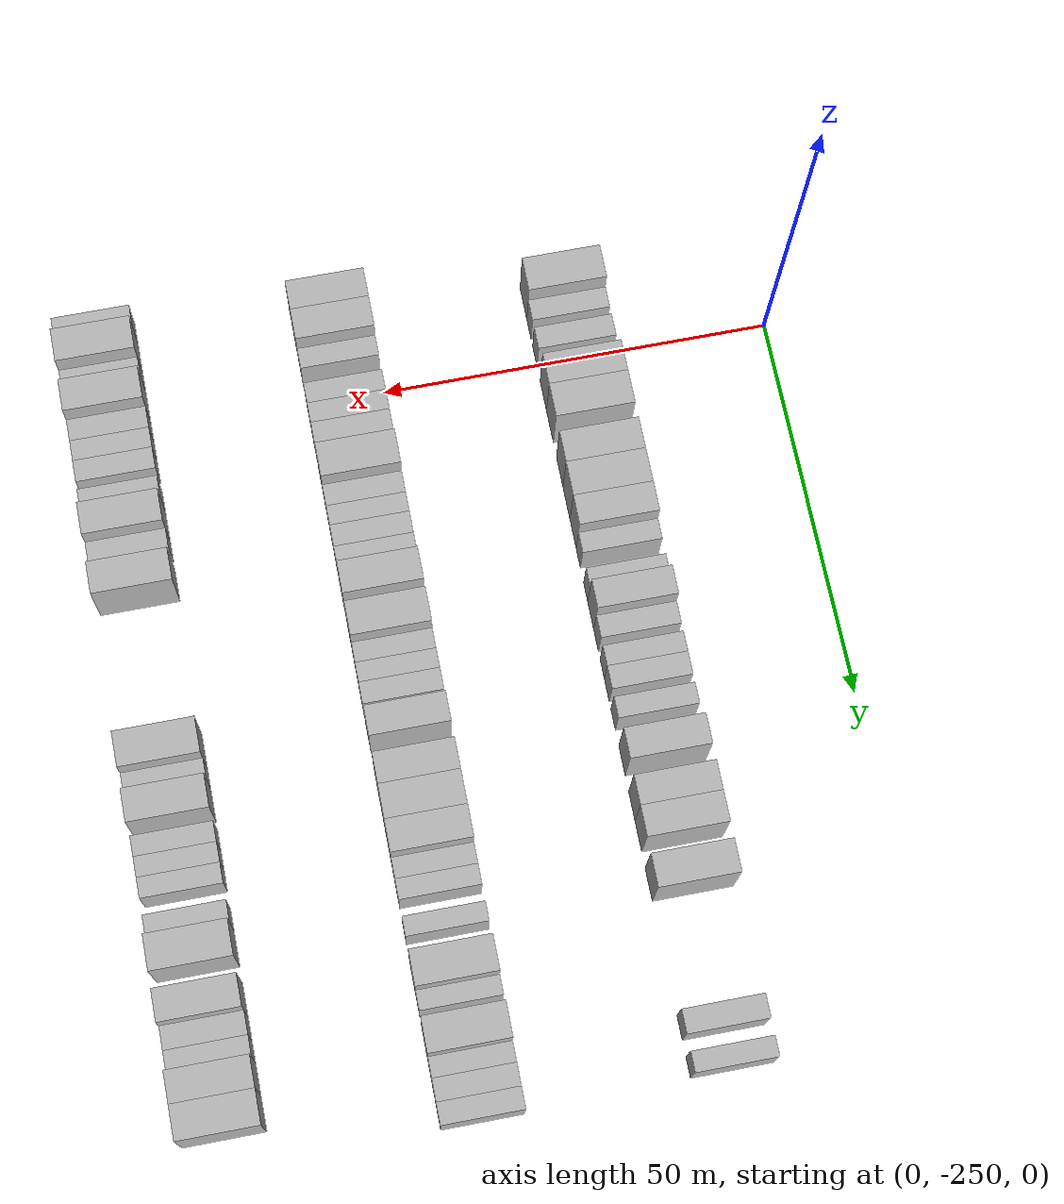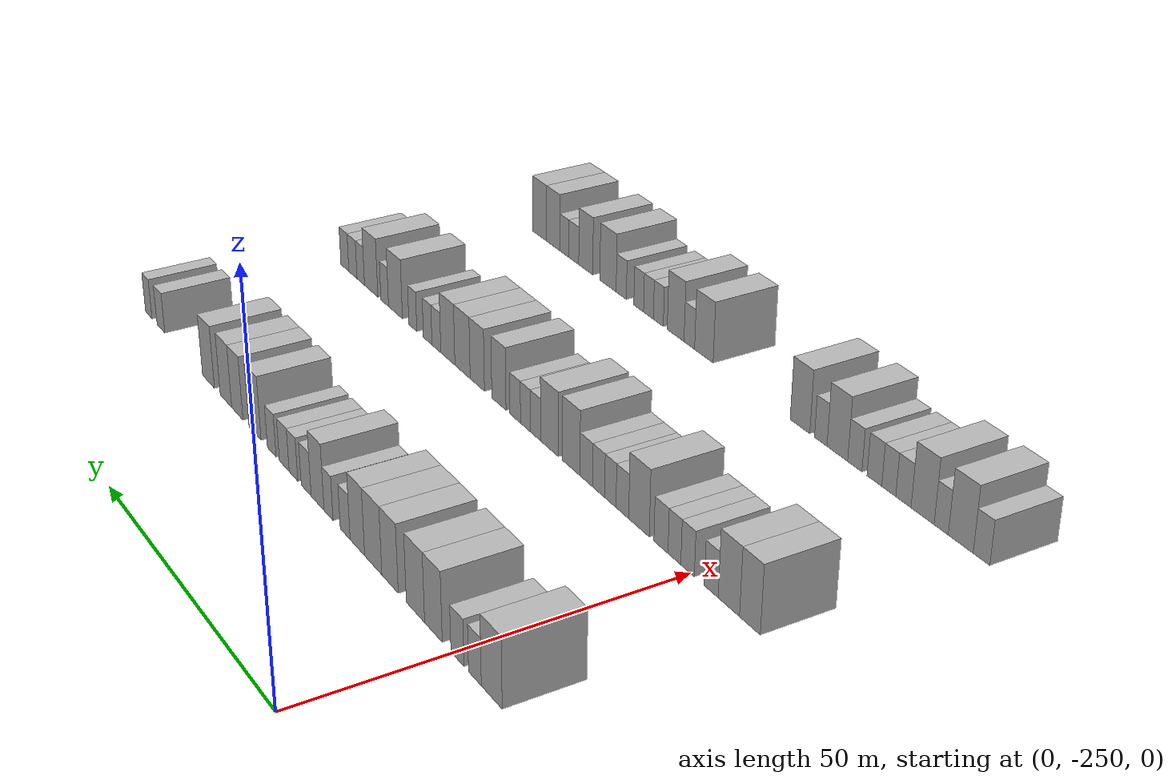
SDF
<sdf version="1.6">
 <world name="default">
  <model name="building_53">
   <static>1</static>
   <pose>25.0000 -258.8321 0 0.000000 0.000000 0.000000</pose>
   <link name="link">
    <pose>0 0 4.50 0 0 0</pose>
    <collision name="collision"><geometry><box><size>10.0000 4.4711 9.0000</size></box></geometry></collision>
    <visual name="visual">
     <cast_shadows>0</cast_shadows>
     <geometry><box><size>10.0000 4.4711 9.0000</size></box></geometry>
     <material>
      <script>
       <uri>model://HANNAS_wall/materials/scripts</uri>
       <uri>model://HANNAS_wall/materials/textures</uri>
       <name>vrc/HANNAS_wall</name>
      </script>
     </material>
    </visual>
   </link>
  </model>
  <model name="building_54">
   <static>1</static>
   <pose>25.0000 -255.1915 0 0.000000 0.000000 0.000000</pose>
   <link name="link">
    <pose>0 0 3.00 0 0 0</pose>
    <collision name="collision"><geometry><box><size>10.0000 2.8101 6.0000</size></box></geometry></collision>
    <visual name="visual">
     <cast_shadows>0</cast_shadows>
     <geometry><box><size>10.0000 2.8101 6.0000</size></box></geometry>
     <material>
      <script>
       <uri>model://HANNAS_wall/materials/scripts</uri>
       <uri>model://HANNAS_wall/materials/textures</uri>
       <name>vrc/HANNAS_wall</name>
      </script>
     </material>
    </visual>
   </link>
  </model>
  <model name="building_55">
   <static>1</static>
   <pose>25.0000 -251.3041 0 0.000000 0.000000 0.000000</pose>
   <link name="link">
    <pose>0 0 3.00 0 0 0</pose>
    <collision name="collision"><geometry><box><size>10.0000 2.9647 6.0000</size></box></geometry></collision>
    <visual name="visual">
     <cast_shadows>0</cast_shadows>
     <geometry><box><size>10.0000 2.9647 6.0000</size></box></geometry>
     <material>
      <script>
       <uri>model://HANNAS_wall/materials/scripts</uri>
       <uri>model://HANNAS_wall/materials/textures</uri>
       <name>vrc/HANNAS_wall</name>
      </script>
     </material>
    </visual>
   </link>
  </model>
  <model name="building_56">
   <static>1</static>
   <pose>25.0000 -245.7521 0 0.000000 0.000000 0.000000</pose>
   <link name="link">
    <pose>0 0 4.50 0 0 0</pose>
    <collision name="collision"><geometry><box><size>10.0000 4.1392 9.0000</size></box></geometry></collision>
    <visual name="visual">
     <cast_shadows>0</cast_shadows>
     <geometry><box><size>10.0000 4.1392 9.0000</size></box></geometry>
     <material>
      <script>
       <uri>model://HANNAS_wall/materials/scripts</uri>
       <uri>model://HANNAS_wall/materials/textures</uri>
       <name>vrc/HANNAS_wall</name>
      </script>
     </material>
    </visual>
   </link>
  </model>
  <model name="building_57">
   <static>1</static>
   <pose>25.0000 -241.4736 0 0.000000 0.000000 0.000000</pose>
   <link name="link">
    <pose>0 0 4.50 0 0 0</pose>
    <collision name="collision"><geometry><box><size>10.0000 4.4177 9.0000</size></box></geometry></collision>
    <visual name="visual">
     <cast_shadows>0</cast_shadows>
     <geometry><box><size>10.0000 4.4177 9.0000</size></box></geometry>
     <material>
      <script>
       <uri>model://HANNAS_wall/materials/scripts</uri>
       <uri>model://HANNAS_wall/materials/textures</uri>
       <name>vrc/HANNAS_wall</name>
      </script>
     </material>
    </visual>
   </link>
  </model>
  <model name="building_58">
   <static>1</static>
   <pose>25.0000 -235.1987 0 0.000000 0.000000 0.000000</pose>
   <link name="link">
    <pose>0 0 4.50 0 0 0</pose>
    <collision name="collision"><geometry><box><size>10.0000 4.1322 9.0000</size></box></geometry></collision>
    <visual name="visual">
     <cast_shadows>0</cast_shadows>
     <geometry><box><size>10.0000 4.1322 9.0000</size></box></geometry>
     <material>
      <script>
       <uri>model://HANNAS_wall/materials/scripts</uri>
       <uri>model://HANNAS_wall/materials/textures</uri>
       <name>vrc/HANNAS_wall</name>
      </script>
     </material>
    </visual>
   </link>
  </model>
  <model name="building_59">
   <static>1</static>
   <pose>25.0000 -230.9025 0 0.000000 0.000000 0.000000</pose>
   <link name="link">
    <pose>0 0 4.50 0 0 0</pose>
    <collision name="collision"><geometry><box><size>10.0000 4.4601 9.0000</size></box></geometry></collision>
    <visual name="visual">
     <cast_shadows>0</cast_shadows>
     <geometry><box><size>10.0000 4.4601 9.0000</size></box></geometry>
     <material>
      <script>
       <uri>model://HANNAS_wall/materials/scripts</uri>
       <uri>model://HANNAS_wall/materials/textures</uri>
       <name>vrc/HANNAS_wall</name>
      </script>
     </material>
    </visual>
   </link>
  </model>
  <model name="building_60">
   <static>1</static>
   <pose>25.0000 -226.7321 0 0.000000 0.000000 0.000000</pose>
   <link name="link">
    <pose>0 0 4.50 0 0 0</pose>
    <collision name="collision"><geometry><box><size>10.0000 3.8808 9.0000</size></box></geometry></collision>
    <visual name="visual">
     <cast_shadows>0</cast_shadows>
     <geometry><box><size>10.0000 3.8808 9.0000</size></box></geometry>
     <material>
      <script>
       <uri>model://HANNAS_wall/materials/scripts</uri>
       <uri>model://HANNAS_wall/materials/textures</uri>
       <name>vrc/HANNAS_wall</name>
      </script>
     </material>
    </visual>
   </link>
  </model>
  <model name="building_61">
   <static>1</static>
   <pose>25.0000 -223.4540 0 0.000000 0.000000 0.000000</pose>
   <link name="link">
    <pose>0 0 3.00 0 0 0</pose>
    <collision name="collision"><geometry><box><size>10.0000 2.6752 6.0000</size></box></geometry></collision>
    <visual name="visual">
     <cast_shadows>0</cast_shadows>
     <geometry><box><size>10.0000 2.6752 6.0000</size></box></geometry>
     <material>
      <script>
       <uri>model://HANNAS_wall/materials/scripts</uri>
       <uri>model://HANNAS_wall/materials/textures</uri>
       <name>vrc/HANNAS_wall</name>
      </script>
     </material>
    </visual>
   </link>
  </model>
  <model name="building_62">
   <static>1</static>
   <pose>25.0000 -218.8609 0 0.000000 0.000000 0.000000</pose>
   <link name="link">
    <pose>0 0 3.00 0 0 0</pose>
    <collision name="collision"><geometry><box><size>10.0000 2.5110 6.0000</size></box></geometry></collision>
    <visual name="visual">
     <cast_shadows>0</cast_shadows>
     <geometry><box><size>10.0000 2.5110 6.0000</size></box></geometry>
     <material>
      <script>
       <uri>model://HANNAS_wall/materials/scripts</uri>
       <uri>model://HANNAS_wall/materials/textures</uri>
       <name>vrc/HANNAS_wall</name>
      </script>
     </material>
    </visual>
   </link>
  </model>
  <model name="building_63">
   <static>1</static>
   <pose>25.0000 -215.7625 0 0.000000 0.000000 0.000000</pose>
   <link name="link">
    <pose>0 0 4.50 0 0 0</pose>
    <collision name="collision"><geometry><box><size>10.0000 3.6857 9.0000</size></box></geometry></collision>
    <visual name="visual">
     <cast_shadows>0</cast_shadows>
     <geometry><box><size>10.0000 3.6857 9.0000</size></box></geometry>
     <material>
      <script>
       <uri>model://HANNAS_wall/materials/scripts</uri>
       <uri>model://HANNAS_wall/materials/textures</uri>
       <name>vrc/HANNAS_wall</name>
      </script>
     </material>
    </visual>
   </link>
  </model>
  <model name="building_64">
   <static>1</static>
   <pose>25.0000 -212.4665 0 0.000000 0.000000 0.000000</pose>
   <link name="link">
    <pose>0 0 3.00 0 0 0</pose>
    <collision name="collision"><geometry><box><size>10.0000 2.9063 6.0000</size></box></geometry></collision>
    <visual name="visual">
     <cast_shadows>0</cast_shadows>
     <geometry><box><size>10.0000 2.9063 6.0000</size></box></geometry>
     <material>
      <script>
       <uri>model://HANNAS_wall/materials/scripts</uri>
       <uri>model://HANNAS_wall/materials/textures</uri>
       <name>vrc/HANNAS_wall</name>
      </script>
     </material>
    </visual>
   </link>
  </model>
  <model name="building_65">
   <static>1</static>
   <pose>25.0000 -208.7132 0 0.000000 0.000000 0.000000</pose>
   <link name="link">
    <pose>0 0 3.00 0 0 0</pose>
    <collision name="collision"><geometry><box><size>10.0000 2.6004 6.0000</size></box></geometry></collision>
    <visual name="visual">
     <cast_shadows>0</cast_shadows>
     <geometry><box><size>10.0000 2.6004 6.0000</size></box></geometry>
     <material>
      <script>
       <uri>model://HANNAS_wall/materials/scripts</uri>
       <uri>model://HANNAS_wall/materials/textures</uri>
       <name>vrc/HANNAS_wall</name>
      </script>
     </material>
    </visual>
   </link>
  </model>
  <model name="building_66">
   <static>1</static>
   <pose>25.0000 -205.9280 0 0.000000 0.000000 0.000000</pose>
   <link name="link">
    <pose>0 0 3.00 0 0 0</pose>
    <collision name="collision"><geometry><box><size>10.0000 2.9700 6.0000</size></box></geometry></collision>
    <visual name="visual">
     <cast_shadows>0</cast_shadows>
     <geometry><box><size>10.0000 2.9700 6.0000</size></box></geometry>
     <material>
      <script>
       <uri>model://HANNAS_wall/materials/scripts</uri>
       <uri>model://HANNAS_wall/materials/textures</uri>
       <name>vrc/HANNAS_wall</name>
      </script>
     </material>
    </visual>
   </link>
  </model>
  <model name="building_67">
   <static>1</static>
   <pose>25.0000 -202.0896 0 0.000000 0.000000 0.000000</pose>
   <link name="link">
    <pose>0 0 3.00 0 0 0</pose>
    <collision name="collision"><geometry><box><size>10.0000 2.7068 6.0000</size></box></geometry></collision>
    <visual name="visual">
     <cast_shadows>0</cast_shadows>
     <geometry><box><size>10.0000 2.7068 6.0000</size></box></geometry>
     <material>
      <script>
       <uri>model://HANNAS_wall/materials/scripts</uri>
       <uri>model://HANNAS_wall/materials/textures</uri>
       <name>vrc/HANNAS_wall</name>
      </script>
     </material>
    </visual>
   </link>
  </model>
  <model name="building_68">
   <static>1</static>
   <pose>25.0000 -196.8141 0 0.000000 0.000000 0.000000</pose>
   <link name="link">
    <pose>0 0 4.50 0 0 0</pose>
    <collision name="collision"><geometry><box><size>10.0000 3.8444 9.0000</size></box></geometry></collision>
    <visual name="visual">
     <cast_shadows>0</cast_shadows>
     <geometry><box><size>10.0000 3.8444 9.0000</size></box></geometry>
     <material>
      <script>
       <uri>model://HANNAS_wall/materials/scripts</uri>
       <uri>model://HANNAS_wall/materials/textures</uri>
       <name>vrc/HANNAS_wall</name>
      </script>
     </material>
    </visual>
   </link>
  </model>
  <model name="building_69">
   <static>1</static>
   <pose>25.0000 -191.0261 0 0.000000 0.000000 0.000000</pose>
   <link name="link">
    <pose>0 0 4.50 0 0 0</pose>
    <collision name="collision"><geometry><box><size>10.0000 3.7315 9.0000</size></box></geometry></collision>
    <visual name="visual">
     <cast_shadows>0</cast_shadows>
     <geometry><box><size>10.0000 3.7315 9.0000</size></box></geometry>
     <material>
      <script>
       <uri>model://HANNAS_wall/materials/scripts</uri>
       <uri>model://HANNAS_wall/materials/textures</uri>
       <name>vrc/HANNAS_wall</name>
      </script>
     </material>
    </visual>
   </link>
  </model>
  <model name="building_70">
   <static>1</static>
   <pose>25.0000 -187.2185 0 0.000000 0.000000 0.000000</pose>
   <link name="link">
    <pose>0 0 4.50 0 0 0</pose>
    <collision name="collision"><geometry><box><size>10.0000 3.8838 9.0000</size></box></geometry></collision>
    <visual name="visual">
     <cast_shadows>0</cast_shadows>
     <geometry><box><size>10.0000 3.8838 9.0000</size></box></geometry>
     <material>
      <script>
       <uri>model://HANNAS_wall/materials/scripts</uri>
       <uri>model://HANNAS_wall/materials/textures</uri>
       <name>vrc/HANNAS_wall</name>
      </script>
     </material>
    </visual>
   </link>
  </model>
  <model name="building_71">
   <static>1</static>
   <pose>25.0000 -181.2052 0 0.000000 0.000000 0.000000</pose>
   <link name="link">
    <pose>0 0 4.50 0 0 0</pose>
    <collision name="collision"><geometry><box><size>10.0000 4.1427 9.0000</size></box></geometry></collision>
    <visual name="visual">
     <cast_shadows>0</cast_shadows>
     <geometry><box><size>10.0000 4.1427 9.0000</size></box></geometry>
     <material>
      <script>
       <uri>model://HANNAS_wall/materials/scripts</uri>
       <uri>model://HANNAS_wall/materials/textures</uri>
       <name>vrc/HANNAS_wall</name>
      </script>
     </material>
    </visual>
   </link>
  </model>
  <model name="building_72">
   <static>1</static>
   <pose>25.0000 -163.6983 0 0.000000 0.000000 0.000000</pose>
   <link name="link">
    <pose>0 0 3.00 0 0 0</pose>
    <collision name="collision"><geometry><box><size>10.0000 2.9570 6.0000</size></box></geometry></collision>
    <visual name="visual">
     <cast_shadows>0</cast_shadows>
     <geometry><box><size>10.0000 2.9570 6.0000</size></box></geometry>
     <material>
      <script>
       <uri>model://HANNAS_wall/materials/scripts</uri>
       <uri>model://HANNAS_wall/materials/textures</uri>
       <name>vrc/HANNAS_wall</name>
      </script>
     </material>
    </visual>
   </link>
  </model>
  <model name="building_73">
   <static>1</static>
   <pose>25.0000 -158.9598 0 0.000000 0.000000 0.000000</pose>
   <link name="link">
    <pose>0 0 3.00 0 0 0</pose>
    <collision name="collision"><geometry><box><size>10.0000 2.5201 6.0000</size></box></geometry></collision>
    <visual name="visual">
     <cast_shadows>0</cast_shadows>
     <geometry><box><size>10.0000 2.5201 6.0000</size></box></geometry>
     <material>
      <script>
       <uri>model://HANNAS_wall/materials/scripts</uri>
       <uri>model://HANNAS_wall/materials/textures</uri>
       <name>vrc/HANNAS_wall</name>
      </script>
     </material>
    </visual>
   </link>
  </model>
  <model name="building_274">
   <static>1</static>
   <pose>55.0000 -261.5722 0 0.000000 0.000000 0.000000</pose>
   <link name="link">
    <pose>0 0 4.50 0 0 0</pose>
    <collision name="collision"><geometry><box><size>10.0000 3.9113 9.0000</size></box></geometry></collision>
    <visual name="visual">
     <cast_shadows>0</cast_shadows>
     <geometry><box><size>10.0000 3.9113 9.0000</size></box></geometry>
     <material>
      <script>
       <uri>model://HANNAS_wall/materials/scripts</uri>
       <uri>model://HANNAS_wall/materials/textures</uri>
       <name>vrc/HANNAS_wall</name>
      </script>
     </material>
    </visual>
   </link>
  </model>
  <model name="building_275">
   <static>1</static>
   <pose>55.0000 -257.5587 0 0.000000 0.000000 0.000000</pose>
   <link name="link">
    <pose>0 0 4.50 0 0 0</pose>
    <collision name="collision"><geometry><box><size>10.0000 4.1156 9.0000</size></box></geometry></collision>
    <visual name="visual">
     <cast_shadows>0</cast_shadows>
     <geometry><box><size>10.0000 4.1156 9.0000</size></box></geometry>
     <material>
      <script>
       <uri>model://HANNAS_wall/materials/scripts</uri>
       <uri>model://HANNAS_wall/materials/textures</uri>
       <name>vrc/HANNAS_wall</name>
      </script>
     </material>
    </visual>
   </link>
  </model>
  <model name="building_276">
   <static>1</static>
   <pose>55.0000 -254.1236 0 0.000000 0.000000 0.000000</pose>
   <link name="link">
    <pose>0 0 3.00 0 0 0</pose>
    <collision name="collision"><geometry><box><size>10.0000 2.7546 6.0000</size></box></geometry></collision>
    <visual name="visual">
     <cast_shadows>0</cast_shadows>
     <geometry><box><size>10.0000 2.7546 6.0000</size></box></geometry>
     <material>
      <script>
       <uri>model://HANNAS_wall/materials/scripts</uri>
       <uri>model://HANNAS_wall/materials/textures</uri>
       <name>vrc/HANNAS_wall</name>
      </script>
     </material>
    </visual>
   </link>
  </model>
  <model name="building_277">
   <static>1</static>
   <pose>55.0000 -249.3664 0 0.000000 0.000000 0.000000</pose>
   <link name="link">
    <pose>0 0 3.00 0 0 0</pose>
    <collision name="collision"><geometry><box><size>10.0000 2.7599 6.0000</size></box></geometry></collision>
    <visual name="visual">
     <cast_shadows>0</cast_shadows>
     <geometry><box><size>10.0000 2.7599 6.0000</size></box></geometry>
     <material>
      <script>
       <uri>model://HANNAS_wall/materials/scripts</uri>
       <uri>model://HANNAS_wall/materials/textures</uri>
       <name>vrc/HANNAS_wall</name>
      </script>
     </material>
    </visual>
   </link>
  </model>
  <model name="building_278">
   <static>1</static>
   <pose>55.0000 -246.6541 0 0.000000 0.000000 0.000000</pose>
   <link name="link">
    <pose>0 0 3.00 0 0 0</pose>
    <collision name="collision"><geometry><box><size>10.0000 2.6647 6.0000</size></box></geometry></collision>
    <visual name="visual">
     <cast_shadows>0</cast_shadows>
     <geometry><box><size>10.0000 2.6647 6.0000</size></box></geometry>
     <material>
      <script>
       <uri>model://HANNAS_wall/materials/scripts</uri>
       <uri>model://HANNAS_wall/materials/textures</uri>
       <name>vrc/HANNAS_wall</name>
      </script>
     </material>
    </visual>
   </link>
  </model>
  <model name="building_279">
   <static>1</static>
   <pose>55.0000 -243.8399 0 0.000000 0.000000 0.000000</pose>
   <link name="link">
    <pose>0 0 3.00 0 0 0</pose>
    <collision name="collision"><geometry><box><size>10.0000 2.9636 6.0000</size></box></geometry></collision>
    <visual name="visual">
     <cast_shadows>0</cast_shadows>
     <geometry><box><size>10.0000 2.9636 6.0000</size></box></geometry>
     <material>
      <script>
       <uri>model://HANNAS_wall/materials/scripts</uri>
       <uri>model://HANNAS_wall/materials/textures</uri>
       <name>vrc/HANNAS_wall</name>
      </script>
     </material>
    </visual>
   </link>
  </model>
  <model name="building_280">
   <static>1</static>
   <pose>55.0000 -239.1136 0 0.000000 0.000000 0.000000</pose>
   <link name="link">
    <pose>0 0 4.50 0 0 0</pose>
    <collision name="collision"><geometry><box><size>10.0000 4.4891 9.0000</size></box></geometry></collision>
    <visual name="visual">
     <cast_shadows>0</cast_shadows>
     <geometry><box><size>10.0000 4.4891 9.0000</size></box></geometry>
     <material>
      <script>
       <uri>model://HANNAS_wall/materials/scripts</uri>
       <uri>model://HANNAS_wall/materials/textures</uri>
       <name>vrc/HANNAS_wall</name>
      </script>
     </material>
    </visual>
   </link>
  </model>
  <model name="building_281">
   <static>1</static>
   <pose>55.0000 -235.4558 0 0.000000 0.000000 0.000000</pose>
   <link name="link">
    <pose>0 0 3.00 0 0 0</pose>
    <collision name="collision"><geometry><box><size>10.0000 2.8265 6.0000</size></box></geometry></collision>
    <visual name="visual">
     <cast_shadows>0</cast_shadows>
     <geometry><box><size>10.0000 2.8265 6.0000</size></box></geometry>
     <material>
      <script>
       <uri>model://HANNAS_wall/materials/scripts</uri>
       <uri>model://HANNAS_wall/materials/textures</uri>
       <name>vrc/HANNAS_wall</name>
      </script>
     </material>
    </visual>
   </link>
  </model>
  <model name="building_282">
   <static>1</static>
   <pose>55.0000 -232.7576 0 0.000000 0.000000 0.000000</pose>
   <link name="link">
    <pose>0 0 3.00 0 0 0</pose>
    <collision name="collision"><geometry><box><size>10.0000 2.5698 6.0000</size></box></geometry></collision>
    <visual name="visual">
     <cast_shadows>0</cast_shadows>
     <geometry><box><size>10.0000 2.5698 6.0000</size></box></geometry>
     <material>
      <script>
       <uri>model://HANNAS_wall/materials/scripts</uri>
       <uri>model://HANNAS_wall/materials/textures</uri>
       <name>vrc/HANNAS_wall</name>
      </script>
     </material>
    </visual>
   </link>
  </model>
  <model name="building_283">
   <static>1</static>
   <pose>55.0000 -230.0612 0 0.000000 0.000000 0.000000</pose>
   <link name="link">
    <pose>0 0 3.00 0 0 0</pose>
    <collision name="collision"><geometry><box><size>10.0000 2.8230 6.0000</size></box></geometry></collision>
    <visual name="visual">
     <cast_shadows>0</cast_shadows>
     <geometry><box><size>10.0000 2.8230 6.0000</size></box></geometry>
     <material>
      <script>
       <uri>model://HANNAS_wall/materials/scripts</uri>
       <uri>model://HANNAS_wall/materials/textures</uri>
       <name>vrc/HANNAS_wall</name>
      </script>
     </material>
    </visual>
   </link>
  </model>
  <model name="building_284">
   <static>1</static>
   <pose>55.0000 -227.1875 0 0.000000 0.000000 0.000000</pose>
   <link name="link">
    <pose>0 0 3.00 0 0 0</pose>
    <collision name="collision"><geometry><box><size>10.0000 2.9246 6.0000</size></box></geometry></collision>
    <visual name="visual">
     <cast_shadows>0</cast_shadows>
     <geometry><box><size>10.0000 2.9246 6.0000</size></box></geometry>
     <material>
      <script>
       <uri>model://HANNAS_wall/materials/scripts</uri>
       <uri>model://HANNAS_wall/materials/textures</uri>
       <name>vrc/HANNAS_wall</name>
      </script>
     </material>
    </visual>
   </link>
  </model>
  <model name="building_285">
   <static>1</static>
   <pose>55.0000 -223.6239 0 0.000000 0.000000 0.000000</pose>
   <link name="link">
    <pose>0 0 4.50 0 0 0</pose>
    <collision name="collision"><geometry><box><size>10.0000 4.2025 9.0000</size></box></geometry></collision>
    <visual name="visual">
     <cast_shadows>0</cast_shadows>
     <geometry><box><size>10.0000 4.2025 9.0000</size></box></geometry>
     <material>
      <script>
       <uri>model://HANNAS_wall/materials/scripts</uri>
       <uri>model://HANNAS_wall/materials/textures</uri>
       <name>vrc/HANNAS_wall</name>
      </script>
     </material>
    </visual>
   </link>
  </model>
  <model name="building_286">
   <static>1</static>
   <pose>55.0000 -218.3127 0 0.000000 0.000000 0.000000</pose>
   <link name="link">
    <pose>0 0 4.50 0 0 0</pose>
    <collision name="collision"><geometry><box><size>10.0000 4.4201 9.0000</size></box></geometry></collision>
    <visual name="visual">
     <cast_shadows>0</cast_shadows>
     <geometry><box><size>10.0000 4.4201 9.0000</size></box></geometry>
     <material>
      <script>
       <uri>model://HANNAS_wall/materials/scripts</uri>
       <uri>model://HANNAS_wall/materials/textures</uri>
       <name>vrc/HANNAS_wall</name>
      </script>
     </material>
    </visual>
   </link>
  </model>
  <model name="building_287">
   <static>1</static>
   <pose>55.0000 -214.8094 0 0.000000 0.000000 0.000000</pose>
   <link name="link">
    <pose>0 0 3.00 0 0 0</pose>
    <collision name="collision"><geometry><box><size>10.0000 2.5865 6.0000</size></box></geometry></collision>
    <visual name="visual">
     <cast_shadows>0</cast_shadows>
     <geometry><box><size>10.0000 2.5865 6.0000</size></box></geometry>
     <material>
      <script>
       <uri>model://HANNAS_wall/materials/scripts</uri>
       <uri>model://HANNAS_wall/materials/textures</uri>
       <name>vrc/HANNAS_wall</name>
      </script>
     </material>
    </visual>
   </link>
  </model>
  <model name="building_288">
   <static>1</static>
   <pose>55.0000 -212.2568 0 0.000000 0.000000 0.000000</pose>
   <link name="link">
    <pose>0 0 3.00 0 0 0</pose>
    <collision name="collision"><geometry><box><size>10.0000 2.5187 6.0000</size></box></geometry></collision>
    <visual name="visual">
     <cast_shadows>0</cast_shadows>
     <geometry><box><size>10.0000 2.5187 6.0000</size></box></geometry>
     <material>
      <script>
       <uri>model://HANNAS_wall/materials/scripts</uri>
       <uri>model://HANNAS_wall/materials/textures</uri>
       <name>vrc/HANNAS_wall</name>
      </script>
     </material>
    </visual>
   </link>
  </model>
  <model name="building_289">
   <static>1</static>
   <pose>55.0000 -209.6009 0 0.000000 0.000000 0.000000</pose>
   <link name="link">
    <pose>0 0 3.00 0 0 0</pose>
    <collision name="collision"><geometry><box><size>10.0000 2.7932 6.0000</size></box></geometry></collision>
    <visual name="visual">
     <cast_shadows>0</cast_shadows>
     <geometry><box><size>10.0000 2.7932 6.0000</size></box></geometry>
     <material>
      <script>
       <uri>model://HANNAS_wall/materials/scripts</uri>
       <uri>model://HANNAS_wall/materials/textures</uri>
       <name>vrc/HANNAS_wall</name>
      </script>
     </material>
    </visual>
   </link>
  </model>
  <model name="building_290">
   <static>1</static>
   <pose>55.0000 -205.3090 0 0.000000 0.000000 0.000000</pose>
   <link name="link">
    <pose>0 0 4.50 0 0 0</pose>
    <collision name="collision"><geometry><box><size>10.0000 3.7906 9.0000</size></box></geometry></collision>
    <visual name="visual">
     <cast_shadows>0</cast_shadows>
     <geometry><box><size>10.0000 3.7906 9.0000</size></box></geometry>
     <material>
      <script>
       <uri>model://HANNAS_wall/materials/scripts</uri>
       <uri>model://HANNAS_wall/materials/textures</uri>
       <name>vrc/HANNAS_wall</name>
      </script>
     </material>
    </visual>
   </link>
  </model>
  <model name="building_291">
   <static>1</static>
   <pose>55.0000 -199.4421 0 0.000000 0.000000 0.000000</pose>
   <link name="link">
    <pose>0 0 4.50 0 0 0</pose>
    <collision name="collision"><geometry><box><size>10.0000 3.9431 9.0000</size></box></geometry></collision>
    <visual name="visual">
     <cast_shadows>0</cast_shadows>
     <geometry><box><size>10.0000 3.9431 9.0000</size></box></geometry>
     <material>
      <script>
       <uri>model://HANNAS_wall/materials/scripts</uri>
       <uri>model://HANNAS_wall/materials/textures</uri>
       <name>vrc/HANNAS_wall</name>
      </script>
     </material>
    </visual>
   </link>
  </model>
  <model name="building_292">
   <static>1</static>
   <pose>55.0000 -195.3104 0 0.000000 0.000000 0.000000</pose>
   <link name="link">
    <pose>0 0 4.50 0 0 0</pose>
    <collision name="collision"><geometry><box><size>10.0000 4.3204 9.0000</size></box></geometry></collision>
    <visual name="visual">
     <cast_shadows>0</cast_shadows>
     <geometry><box><size>10.0000 4.3204 9.0000</size></box></geometry>
     <material>
      <script>
       <uri>model://HANNAS_wall/materials/scripts</uri>
       <uri>model://HANNAS_wall/materials/textures</uri>
       <name>vrc/HANNAS_wall</name>
      </script>
     </material>
    </visual>
   </link>
  </model>
  <model name="building_293">
   <static>1</static>
   <pose>55.0000 -191.1105 0 0.000000 0.000000 0.000000</pose>
   <link name="link">
    <pose>0 0 4.50 0 0 0</pose>
    <collision name="collision"><geometry><box><size>10.0000 4.0793 9.0000</size></box></geometry></collision>
    <visual name="visual">
     <cast_shadows>0</cast_shadows>
     <geometry><box><size>10.0000 4.0793 9.0000</size></box></geometry>
     <material>
      <script>
       <uri>model://HANNAS_wall/materials/scripts</uri>
       <uri>model://HANNAS_wall/materials/textures</uri>
       <name>vrc/HANNAS_wall</name>
      </script>
     </material>
    </visual>
   </link>
  </model>
  <model name="building_294">
   <static>1</static>
   <pose>55.0000 -187.7648 0 0.000000 0.000000 0.000000</pose>
   <link name="link">
    <pose>0 0 3.00 0 0 0</pose>
    <collision name="collision"><geometry><box><size>10.0000 2.6122 6.0000</size></box></geometry></collision>
    <visual name="visual">
     <cast_shadows>0</cast_shadows>
     <geometry><box><size>10.0000 2.6122 6.0000</size></box></geometry>
     <material>
      <script>
       <uri>model://HANNAS_wall/materials/scripts</uri>
       <uri>model://HANNAS_wall/materials/textures</uri>
       <name>vrc/HANNAS_wall</name>
      </script>
     </material>
    </visual>
   </link>
  </model>
  <model name="building_295">
   <static>1</static>
   <pose>55.0000 -185.1806 0 0.000000 0.000000 0.000000</pose>
   <link name="link">
    <pose>0 0 3.00 0 0 0</pose>
    <collision name="collision"><geometry><box><size>10.0000 2.5562 6.0000</size></box></geometry></collision>
    <visual name="visual">
     <cast_shadows>0</cast_shadows>
     <geometry><box><size>10.0000 2.5562 6.0000</size></box></geometry>
     <material>
      <script>
       <uri>model://HANNAS_wall/materials/scripts</uri>
       <uri>model://HANNAS_wall/materials/textures</uri>
       <name>vrc/HANNAS_wall</name>
      </script>
     </material>
    </visual>
   </link>
  </model>
  <model name="building_296">
   <static>1</static>
   <pose>55.0000 -180.6893 0 0.000000 0.000000 0.000000</pose>
   <link name="link">
    <pose>0 0 3.00 0 0 0</pose>
    <collision name="collision"><geometry><box><size>10.0000 2.4263 6.0000</size></box></geometry></collision>
    <visual name="visual">
     <cast_shadows>0</cast_shadows>
     <geometry><box><size>10.0000 2.4263 6.0000</size></box></geometry>
     <material>
      <script>
       <uri>model://HANNAS_wall/materials/scripts</uri>
       <uri>model://HANNAS_wall/materials/textures</uri>
       <name>vrc/HANNAS_wall</name>
      </script>
     </material>
    </visual>
   </link>
  </model>
  <model name="building_297">
   <static>1</static>
   <pose>55.0000 -175.2774 0 0.000000 0.000000 0.000000</pose>
   <link name="link">
    <pose>0 0 4.50 0 0 0</pose>
    <collision name="collision"><geometry><box><size>10.0000 4.3976 9.0000</size></box></geometry></collision>
    <visual name="visual">
     <cast_shadows>0</cast_shadows>
     <geometry><box><size>10.0000 4.3976 9.0000</size></box></geometry>
     <material>
      <script>
       <uri>model://HANNAS_wall/materials/scripts</uri>
       <uri>model://HANNAS_wall/materials/textures</uri>
       <name>vrc/HANNAS_wall</name>
      </script>
     </material>
    </visual>
   </link>
  </model>
  <model name="building_298">
   <static>1</static>
   <pose>55.0000 -171.8645 0 0.000000 0.000000 0.000000</pose>
   <link name="link">
    <pose>0 0 3.00 0 0 0</pose>
    <collision name="collision"><geometry><box><size>10.0000 2.4282 6.0000</size></box></geometry></collision>
    <visual name="visual">
     <cast_shadows>0</cast_shadows>
     <geometry><box><size>10.0000 2.4282 6.0000</size></box></geometry>
     <material>
      <script>
       <uri>model://HANNAS_wall/materials/scripts</uri>
       <uri>model://HANNAS_wall/materials/textures</uri>
       <name>vrc/HANNAS_wall</name>
      </script>
     </material>
    </visual>
   </link>
  </model>
  <model name="building_299">
   <static>1</static>
   <pose>55.0000 -167.4576 0 0.000000 0.000000 0.000000</pose>
   <link name="link">
    <pose>0 0 4.50 0 0 0</pose>
    <collision name="collision"><geometry><box><size>10.0000 4.3855 9.0000</size></box></geometry></collision>
    <visual name="visual">
     <cast_shadows>0</cast_shadows>
     <geometry><box><size>10.0000 4.3855 9.0000</size></box></geometry>
     <material>
      <script>
       <uri>model://HANNAS_wall/materials/scripts</uri>
       <uri>model://HANNAS_wall/materials/textures</uri>
       <name>vrc/HANNAS_wall</name>
      </script>
     </material>
    </visual>
   </link>
  </model>
  <model name="building_300">
   <static>1</static>
   <pose>55.0000 -164.0134 0 0.000000 0.000000 0.000000</pose>
   <link name="link">
    <pose>0 0 3.00 0 0 0</pose>
    <collision name="collision"><geometry><box><size>10.0000 2.5030 6.0000</size></box></geometry></collision>
    <visual name="visual">
     <cast_shadows>0</cast_shadows>
     <geometry><box><size>10.0000 2.5030 6.0000</size></box></geometry>
     <material>
      <script>
       <uri>model://HANNAS_wall/materials/scripts</uri>
       <uri>model://HANNAS_wall/materials/textures</uri>
       <name>vrc/HANNAS_wall</name>
      </script>
     </material>
    </visual>
   </link>
  </model>
  <model name="building_301">
   <static>1</static>
   <pose>55.0000 -161.3758 0 0.000000 0.000000 0.000000</pose>
   <link name="link">
    <pose>0 0 3.00 0 0 0</pose>
    <collision name="collision"><geometry><box><size>10.0000 2.7722 6.0000</size></box></geometry></collision>
    <visual name="visual">
     <cast_shadows>0</cast_shadows>
     <geometry><box><size>10.0000 2.7722 6.0000</size></box></geometry>
     <material>
      <script>
       <uri>model://HANNAS_wall/materials/scripts</uri>
       <uri>model://HANNAS_wall/materials/textures</uri>
       <name>vrc/HANNAS_wall</name>
      </script>
     </material>
    </visual>
   </link>
  </model>
  <model name="building_302">
   <static>1</static>
   <pose>55.0000 -158.6339 0 0.000000 0.000000 0.000000</pose>
   <link name="link">
    <pose>0 0 3.00 0 0 0</pose>
    <collision name="collision"><geometry><box><size>10.0000 2.7117 6.0000</size></box></geometry></collision>
    <visual name="visual">
     <cast_shadows>0</cast_shadows>
     <geometry><box><size>10.0000 2.7117 6.0000</size></box></geometry>
     <material>
      <script>
       <uri>model://HANNAS_wall/materials/scripts</uri>
       <uri>model://HANNAS_wall/materials/textures</uri>
       <name>vrc/HANNAS_wall</name>
      </script>
     </material>
    </visual>
   </link>
  </model>
  <model name="building_498">
   <static>1</static>
   <pose>85.0000 -263.9570 0 0.000000 0.000000 0.000000</pose>
   <link name="link">
    <pose>0 0 3.00 0 0 0</pose>
    <collision name="collision"><geometry><box><size>10.0000 2.8707 6.0000</size></box></geometry></collision>
    <visual name="visual">
     <cast_shadows>0</cast_shadows>
     <geometry><box><size>10.0000 2.8707 6.0000</size></box></geometry>
     <material>
      <script>
       <uri>model://HANNAS_wall/materials/scripts</uri>
       <uri>model://HANNAS_wall/materials/textures</uri>
       <name>vrc/HANNAS_wall</name>
      </script>
     </material>
    </visual>
   </link>
  </model>
  <model name="building_499">
   <static>1</static>
   <pose>85.0000 -260.3332 0 0.000000 0.000000 0.000000</pose>
   <link name="link">
    <pose>0 0 4.50 0 0 0</pose>
    <collision name="collision"><geometry><box><size>10.0000 4.3768 9.0000</size></box></geometry></collision>
    <visual name="visual">
     <cast_shadows>0</cast_shadows>
     <geometry><box><size>10.0000 4.3768 9.0000</size></box></geometry>
     <material>
      <script>
       <uri>model://HANNAS_wall/materials/scripts</uri>
       <uri>model://HANNAS_wall/materials/textures</uri>
       <name>vrc/HANNAS_wall</name>
      </script>
     </material>
    </visual>
   </link>
  </model>
  <model name="building_500">
   <static>1</static>
   <pose>85.0000 -256.8726 0 0.000000 0.000000 0.000000</pose>
   <link name="link">
    <pose>0 0 3.00 0 0 0</pose>
    <collision name="collision"><geometry><box><size>10.0000 2.5445 6.0000</size></box></geometry></collision>
    <visual name="visual">
     <cast_shadows>0</cast_shadows>
     <geometry><box><size>10.0000 2.5445 6.0000</size></box></geometry>
     <material>
      <script>
       <uri>model://HANNAS_wall/materials/scripts</uri>
       <uri>model://HANNAS_wall/materials/textures</uri>
       <name>vrc/HANNAS_wall</name>
      </script>
     </material>
    </visual>
   </link>
  </model>
  <model name="building_501">
   <static>1</static>
   <pose>85.0000 -253.4722 0 0.000000 0.000000 0.000000</pose>
   <link name="link">
    <pose>0 0 4.50 0 0 0</pose>
    <collision name="collision"><geometry><box><size>10.0000 4.2563 9.0000</size></box></geometry></collision>
    <visual name="visual">
     <cast_shadows>0</cast_shadows>
     <geometry><box><size>10.0000 4.2563 9.0000</size></box></geometry>
     <material>
      <script>
       <uri>model://HANNAS_wall/materials/scripts</uri>
       <uri>model://HANNAS_wall/materials/textures</uri>
       <name>vrc/HANNAS_wall</name>
      </script>
     </material>
    </visual>
   </link>
  </model>
  <model name="building_502">
   <static>1</static>
   <pose>85.0000 -249.9124 0 0.000000 0.000000 0.000000</pose>
   <link name="link">
    <pose>0 0 3.00 0 0 0</pose>
    <collision name="collision"><geometry><box><size>10.0000 2.8633 6.0000</size></box></geometry></collision>
    <visual name="visual">
     <cast_shadows>0</cast_shadows>
     <geometry><box><size>10.0000 2.8633 6.0000</size></box></geometry>
     <material>
      <script>
       <uri>model://HANNAS_wall/materials/scripts</uri>
       <uri>model://HANNAS_wall/materials/textures</uri>
       <name>vrc/HANNAS_wall</name>
      </script>
     </material>
    </visual>
   </link>
  </model>
  <model name="building_503">
   <static>1</static>
   <pose>85.0000 -247.1372 0 0.000000 0.000000 0.000000</pose>
   <link name="link">
    <pose>0 0 3.00 0 0 0</pose>
    <collision name="collision"><geometry><box><size>10.0000 2.6871 6.0000</size></box></geometry></collision>
    <visual name="visual">
     <cast_shadows>0</cast_shadows>
     <geometry><box><size>10.0000 2.6871 6.0000</size></box></geometry>
     <material>
      <script>
       <uri>model://HANNAS_wall/materials/scripts</uri>
       <uri>model://HANNAS_wall/materials/textures</uri>
       <name>vrc/HANNAS_wall</name>
      </script>
     </material>
    </visual>
   </link>
  </model>
  <model name="building_504">
   <static>1</static>
   <pose>85.0000 -244.3608 0 0.000000 0.000000 0.000000</pose>
   <link name="link">
    <pose>0 0 3.00 0 0 0</pose>
    <collision name="collision"><geometry><box><size>10.0000 2.8657 6.0000</size></box></geometry></collision>
    <visual name="visual">
     <cast_shadows>0</cast_shadows>
     <geometry><box><size>10.0000 2.8657 6.0000</size></box></geometry>
     <material>
      <script>
       <uri>model://HANNAS_wall/materials/scripts</uri>
       <uri>model://HANNAS_wall/materials/textures</uri>
       <name>vrc/HANNAS_wall</name>
      </script>
     </material>
    </visual>
   </link>
  </model>
  <model name="building_505">
   <static>1</static>
   <pose>85.0000 -240.5040 0 0.000000 0.000000 0.000000</pose>
   <link name="link">
    <pose>0 0 3.00 0 0 0</pose>
    <collision name="collision"><geometry><box><size>10.0000 2.8478 6.0000</size></box></geometry></collision>
    <visual name="visual">
     <cast_shadows>0</cast_shadows>
     <geometry><box><size>10.0000 2.8478 6.0000</size></box></geometry>
     <material>
      <script>
       <uri>model://HANNAS_wall/materials/scripts</uri>
       <uri>model://HANNAS_wall/materials/textures</uri>
       <name>vrc/HANNAS_wall</name>
      </script>
     </material>
    </visual>
   </link>
  </model>
  <model name="building_506">
   <static>1</static>
   <pose>85.0000 -236.9776 0 0.000000 0.000000 0.000000</pose>
   <link name="link">
    <pose>0 0 4.50 0 0 0</pose>
    <collision name="collision"><geometry><box><size>10.0000 4.2051 9.0000</size></box></geometry></collision>
    <visual name="visual">
     <cast_shadows>0</cast_shadows>
     <geometry><box><size>10.0000 4.2051 9.0000</size></box></geometry>
     <material>
      <script>
       <uri>model://HANNAS_wall/materials/scripts</uri>
       <uri>model://HANNAS_wall/materials/textures</uri>
       <name>vrc/HANNAS_wall</name>
      </script>
     </material>
    </visual>
   </link>
  </model>
  <model name="building_507">
   <static>1</static>
   <pose>85.0000 -233.5806 0 0.000000 0.000000 0.000000</pose>
   <link name="link">
    <pose>0 0 3.00 0 0 0</pose>
    <collision name="collision"><geometry><box><size>10.0000 2.5889 6.0000</size></box></geometry></collision>
    <visual name="visual">
     <cast_shadows>0</cast_shadows>
     <geometry><box><size>10.0000 2.5889 6.0000</size></box></geometry>
     <material>
      <script>
       <uri>model://HANNAS_wall/materials/scripts</uri>
       <uri>model://HANNAS_wall/materials/textures</uri>
       <name>vrc/HANNAS_wall</name>
      </script>
     </material>
    </visual>
   </link>
  </model>
  <model name="building_508">
   <static>1</static>
   <pose>85.0000 -229.2057 0 0.000000 0.000000 0.000000</pose>
   <link name="link">
    <pose>0 0 4.50 0 0 0</pose>
    <collision name="collision"><geometry><box><size>10.0000 4.1609 9.0000</size></box></geometry></collision>
    <visual name="visual">
     <cast_shadows>0</cast_shadows>
     <geometry><box><size>10.0000 4.1609 9.0000</size></box></geometry>
     <material>
      <script>
       <uri>model://HANNAS_wall/materials/scripts</uri>
       <uri>model://HANNAS_wall/materials/textures</uri>
       <name>vrc/HANNAS_wall</name>
      </script>
     </material>
    </visual>
   </link>
  </model>
  <model name="building_509">
   <static>1</static>
   <pose>85.0000 -207.4205 0 0.000000 0.000000 0.000000</pose>
   <link name="link">
    <pose>0 0 4.50 0 0 0</pose>
    <collision name="collision"><geometry><box><size>10.0000 4.4698 9.0000</size></box></geometry></collision>
    <visual name="visual">
     <cast_shadows>0</cast_shadows>
     <geometry><box><size>10.0000 4.4698 9.0000</size></box></geometry>
     <material>
      <script>
       <uri>model://HANNAS_wall/materials/scripts</uri>
       <uri>model://HANNAS_wall/materials/textures</uri>
       <name>vrc/HANNAS_wall</name>
      </script>
     </material>
    </visual>
   </link>
  </model>
  <model name="building_510">
   <static>1</static>
   <pose>85.0000 -203.8813 0 0.000000 0.000000 0.000000</pose>
   <link name="link">
    <pose>0 0 3.00 0 0 0</pose>
    <collision name="collision"><geometry><box><size>10.0000 2.6087 6.0000</size></box></geometry></collision>
    <visual name="visual">
     <cast_shadows>0</cast_shadows>
     <geometry><box><size>10.0000 2.6087 6.0000</size></box></geometry>
     <material>
      <script>
       <uri>model://HANNAS_wall/materials/scripts</uri>
       <uri>model://HANNAS_wall/materials/textures</uri>
       <name>vrc/HANNAS_wall</name>
      </script>
     </material>
    </visual>
   </link>
  </model>
  <model name="building_511">
   <static>1</static>
   <pose>85.0000 -200.4839 0 0.000000 0.000000 0.000000</pose>
   <link name="link">
    <pose>0 0 4.50 0 0 0</pose>
    <collision name="collision"><geometry><box><size>10.0000 4.1861 9.0000</size></box></geometry></collision>
    <visual name="visual">
     <cast_shadows>0</cast_shadows>
     <geometry><box><size>10.0000 4.1861 9.0000</size></box></geometry>
     <material>
      <script>
       <uri>model://HANNAS_wall/materials/scripts</uri>
       <uri>model://HANNAS_wall/materials/textures</uri>
       <name>vrc/HANNAS_wall</name>
      </script>
     </material>
    </visual>
   </link>
  </model>
  <model name="building_512">
   <static>1</static>
   <pose>85.0000 -196.1134 0 0.000000 0.000000 0.000000</pose>
   <link name="link">
    <pose>0 0 3.00 0 0 0</pose>
    <collision name="collision"><geometry><box><size>10.0000 2.5550 6.0000</size></box></geometry></collision>
    <visual name="visual">
     <cast_shadows>0</cast_shadows>
     <geometry><box><size>10.0000 2.5550 6.0000</size></box></geometry>
     <material>
      <script>
       <uri>model://HANNAS_wall/materials/scripts</uri>
       <uri>model://HANNAS_wall/materials/textures</uri>
       <name>vrc/HANNAS_wall</name>
      </script>
     </material>
    </visual>
   </link>
  </model>
  <model name="building_513">
   <static>1</static>
   <pose>85.0000 -193.5688 0 0.000000 0.000000 0.000000</pose>
   <link name="link">
    <pose>0 0 3.00 0 0 0</pose>
    <collision name="collision"><geometry><box><size>10.0000 2.5343 6.0000</size></box></geometry></collision>
    <visual name="visual">
     <cast_shadows>0</cast_shadows>
     <geometry><box><size>10.0000 2.5343 6.0000</size></box></geometry>
     <material>
      <script>
       <uri>model://HANNAS_wall/materials/scripts</uri>
       <uri>model://HANNAS_wall/materials/textures</uri>
       <name>vrc/HANNAS_wall</name>
      </script>
     </material>
    </visual>
   </link>
  </model>
  <model name="building_514">
   <static>1</static>
   <pose>85.0000 -191.0207 0 0.000000 0.000000 0.000000</pose>
   <link name="link">
    <pose>0 0 3.00 0 0 0</pose>
    <collision name="collision"><geometry><box><size>10.0000 2.5619 6.0000</size></box></geometry></collision>
    <visual name="visual">
     <cast_shadows>0</cast_shadows>
     <geometry><box><size>10.0000 2.5619 6.0000</size></box></geometry>
     <material>
      <script>
       <uri>model://HANNAS_wall/materials/scripts</uri>
       <uri>model://HANNAS_wall/materials/textures</uri>
       <name>vrc/HANNAS_wall</name>
      </script>
     </material>
    </visual>
   </link>
  </model>
  <model name="building_515">
   <static>1</static>
   <pose>85.0000 -186.3623 0 0.000000 0.000000 0.000000</pose>
   <link name="link">
    <pose>0 0 3.00 0 0 0</pose>
    <collision name="collision"><geometry><box><size>10.0000 2.7549 6.0000</size></box></geometry></collision>
    <visual name="visual">
     <cast_shadows>0</cast_shadows>
     <geometry><box><size>10.0000 2.7549 6.0000</size></box></geometry>
     <material>
      <script>
       <uri>model://HANNAS_wall/materials/scripts</uri>
       <uri>model://HANNAS_wall/materials/textures</uri>
       <name>vrc/HANNAS_wall</name>
      </script>
     </material>
    </visual>
   </link>
  </model>
  <model name="building_516">
   <static>1</static>
   <pose>85.0000 -182.7575 0 0.000000 0.000000 0.000000</pose>
   <link name="link">
    <pose>0 0 4.50 0 0 0</pose>
    <collision name="collision"><geometry><box><size>10.0000 4.4548 9.0000</size></box></geometry></collision>
    <visual name="visual">
     <cast_shadows>0</cast_shadows>
     <geometry><box><size>10.0000 4.4548 9.0000</size></box></geometry>
     <material>
      <script>
       <uri>model://HANNAS_wall/materials/scripts</uri>
       <uri>model://HANNAS_wall/materials/textures</uri>
       <name>vrc/HANNAS_wall</name>
      </script>
     </material>
    </visual>
   </link>
  </model>
  <model name="building_517">
   <static>1</static>
   <pose>85.0000 -176.5374 0 0.000000 0.000000 0.000000</pose>
   <link name="link">
    <pose>0 0 4.50 0 0 0</pose>
    <collision name="collision"><geometry><box><size>10.0000 3.9853 9.0000</size></box></geometry></collision>
    <visual name="visual">
     <cast_shadows>0</cast_shadows>
     <geometry><box><size>10.0000 3.9853 9.0000</size></box></geometry>
     <material>
      <script>
       <uri>model://HANNAS_wall/materials/scripts</uri>
       <uri>model://HANNAS_wall/materials/textures</uri>
       <name>vrc/HANNAS_wall</name>
      </script>
     </material>
    </visual>
   </link>
  </model>
  <model name="building_518">
   <static>1</static>
   <pose>85.0000 -173.1000 0 0.000000 0.000000 0.000000</pose>
   <link name="link">
    <pose>0 0 3.00 0 0 0</pose>
    <collision name="collision"><geometry><box><size>10.0000 2.8896 6.0000</size></box></geometry></collision>
    <visual name="visual">
     <cast_shadows>0</cast_shadows>
     <geometry><box><size>10.0000 2.8896 6.0000</size></box></geometry>
     <material>
      <script>
       <uri>model://HANNAS_wall/materials/scripts</uri>
       <uri>model://HANNAS_wall/materials/textures</uri>
       <name>vrc/HANNAS_wall</name>
      </script>
     </material>
    </visual>
   </link>
  </model>
  <model name="building_519">
   <static>1</static>
   <pose>85.0000 -170.3489 0 0.000000 0.000000 0.000000</pose>
   <link name="link">
    <pose>0 0 3.00 0 0 0</pose>
    <collision name="collision"><geometry><box><size>10.0000 2.6125 6.0000</size></box></geometry></collision>
    <visual name="visual">
     <cast_shadows>0</cast_shadows>
     <geometry><box><size>10.0000 2.6125 6.0000</size></box></geometry>
     <material>
      <script>
       <uri>model://HANNAS_wall/materials/scripts</uri>
       <uri>model://HANNAS_wall/materials/textures</uri>
       <name>vrc/HANNAS_wall</name>
      </script>
     </material>
    </visual>
   </link>
  </model>
  <model name="building_520">
   <static>1</static>
   <pose>85.0000 -167.0965 0 0.000000 0.000000 0.000000</pose>
   <link name="link">
    <pose>0 0 4.50 0 0 0</pose>
    <collision name="collision"><geometry><box><size>10.0000 3.8922 9.0000</size></box></geometry></collision>
    <visual name="visual">
     <cast_shadows>0</cast_shadows>
     <geometry><box><size>10.0000 3.8922 9.0000</size></box></geometry>
     <material>
      <script>
       <uri>model://HANNAS_wall/materials/scripts</uri>
       <uri>model://HANNAS_wall/materials/textures</uri>
       <name>vrc/HANNAS_wall</name>
      </script>
     </material>
    </visual>
   </link>
  </model>
  <model name="building_521">
   <static>1</static>
   <pose>85.0000 -163.0140 0 0.000000 0.000000 0.000000</pose>
   <link name="link">
    <pose>0 0 4.50 0 0 0</pose>
    <collision name="collision"><geometry><box><size>10.0000 4.2729 9.0000</size></box></geometry></collision>
    <visual name="visual">
     <cast_shadows>0</cast_shadows>
     <geometry><box><size>10.0000 4.2729 9.0000</size></box></geometry>
     <material>
      <script>
       <uri>model://HANNAS_wall/materials/scripts</uri>
       <uri>model://HANNAS_wall/materials/textures</uri>
       <name>vrc/HANNAS_wall</name>
      </script>
     </material>
    </visual>
   </link>
  </model>
 </world>
</sdf>
